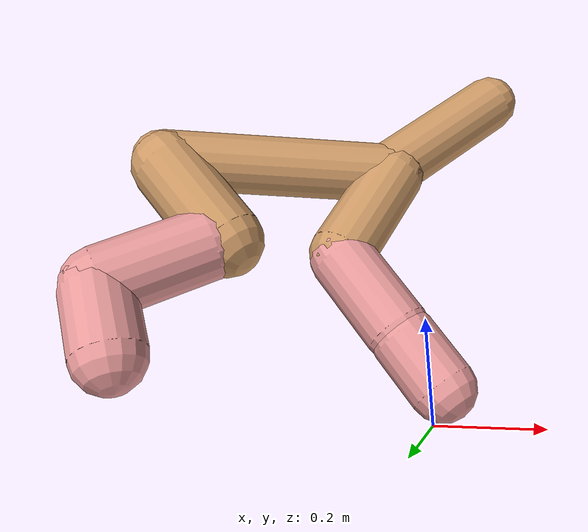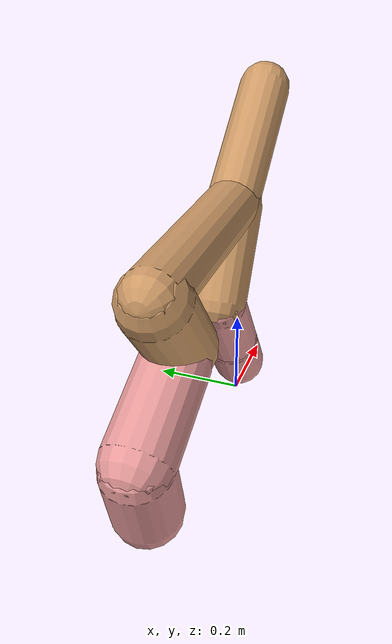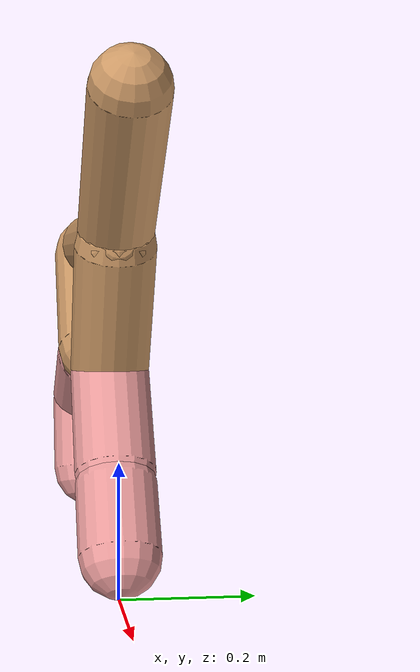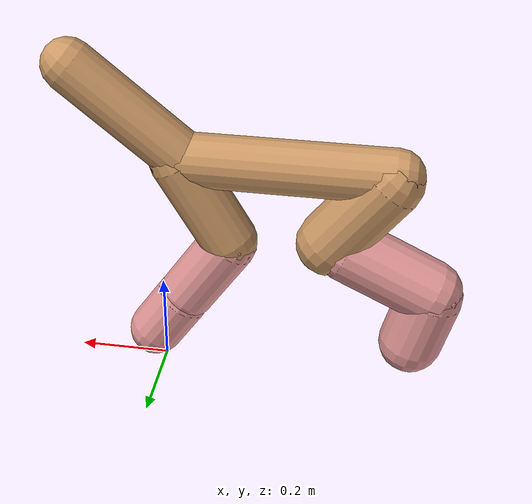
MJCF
<mujoco model="cheetah">
  <compiler angle="radian" coordinate="local" inertiafromgeom="true" settotalmass="14" />
  <default>
    <joint armature=".1" damping=".01" limited="true" solimplimit="0 .8 .03" solreflimit=".02 1" stiffness="8" />
    <geom conaffinity="0" condim="3" contype="1" friction="0.8 .1 .1" rgba="0.8 0.6 .4 1" solimp="0.0 0.8 0.01" solref="0.02 1" />
    <motor ctrllimited="true" ctrlrange="-1 1" />
  </default>
  <size nstack="300000" nuser_geom="1" />
  <option gravity="0 0 -9.81" timestep="0.01" />
  <worldbody>
    <body name="torso" pos="0.0 0.0 0.5167753283276153">
      <joint armature="0" axis="1 0 0" damping="0" limited="false" name="ignorex" pos="0 0 0" stiffness="0" type="slide" />
      <joint armature="0" axis="0 0 1" damping="0" limited="false" name="ignorez" pos="0 0 0" stiffness="0" type="slide" />
      <joint armature="0" axis="0 1 0" damping="0" limited="false" name="ignorey" pos="0 0 0" stiffness="0" type="hinge" />
      <geom fromto="-0.5 0.0 0.0 -0.04070094282122405 0.0 0.0" name="torso" size="0.05810429704854656" type="capsule" />
      <geom axisangle="0 1 0 .87" name="head" pos="0.05929905717877593 0.0 0.1" size="0.05668779729570417 0.15" type="capsule" />

      <body name="bthigh" pos="-.5 0 0">
        <joint axis="0 1 0" damping="6" name="bthigh" pos="0 0 0" range="-.52 1.05" stiffness="240" type="hinge" />
        <geom axisangle="0 1 0 -3.8" name="bthigh" pos="0.0734775819030384 0.0 -0.0955208564739499" size="0.06992500841824388 0.10149999999999999" type="capsule" />
        <body name="bshin" pos="0.10695516380607678 0.0 -0.18104171294789978">
          <joint axis="0 1 0" damping="4.5" name="bshin" pos="0 0 0" range="-.785 .785" stiffness="180" type="hinge" />
          <geom axisangle="0 1 0 -2.03" name="bshin" pos="-0.0997507764050038 0.0 -0.0498753882025019" rgba="0.9 0.6 0.6 1" size="0.06992500841824388 0.105" type="capsule" />
          <body name="bfoot" pos="-0.1995015528100076 0.0 -0.0997507764050038">
            <joint axis="0 1 0" damping="3" name="bfoot" pos="0 0 0" range="-.4 .785" stiffness="120" type="hinge" />
            <geom axisangle="0 1 0 -.27" name="bfoot" pos="0.021667753813597694 0.0 -0.07005907066396588" rgba="0.9 0.6 0.6 1" size="0.06992500841824388 0.0658" type="capsule" />
            <inertial mass="10" />
          </body>
        </body>
      </body>
      <body name="fthigh" pos="-0.04070094282122405 0.0 0.0">
        <joint axis="0 1 0" damping="4.5" name="fthigh" pos="0 0 0" range="-1.5 0.8" stiffness="180" type="hinge" />
        <geom axisangle="0 1 0 .52" name="fthigh" pos="-0.05715609494995311 0.0 -0.09798187705706246" size="0.061006054120830724 0.10750953835520172" type="capsule" />
        <body name="fshin" pos="-0.11431218989990621 0.0 -0.19596375411412492">
          <joint axis="0 1 0" damping="3" name="fshin" pos="0 0 0" range="-1.2 1.1" stiffness="120" type="hinge" />
          <geom axisangle="0 1 0 -.6" name="fshin" pos="0.05310534588230752 0.0 -0.07353047891396425" rgba="0.9 0.6 0.6 1" size="0.061006054120830724 0.08568429372670212" type="capsule" />
          <body name="ffoot" pos="0.10621069176461503 0.0 -0.1470609578279285">
            <joint axis="0 1 0" damping="1.5" name="ffoot" pos="0 0 0" range="-3.1 -0.3" stiffness="60" type="hinge" />
            <geom axisangle="0 1 0 -.6" name="ffoot" pos="0.037745178610257765 0.0 -0.0587147222826232" rgba="0.9 0.6 0.6 1" size="0.061006054120830724 0.05658396755536933" type="capsule" />
            <inertial mass="10" />
          </body>
        </body>
      </body>
    </body>
  </worldbody>
  <actuator>
    <motor gear="120" joint="bthigh" name="bthigh" />
    <motor gear="90" joint="bshin" name="bshin" />
    <motor gear="60" joint="bfoot" name="bfoot" />
    <motor gear="120" joint="fthigh" name="fthigh" />
    <motor gear="60" joint="fshin" name="fshin" />
    <motor gear="30" joint="ffoot" name="ffoot" />
  </actuator>
</mujoco>
